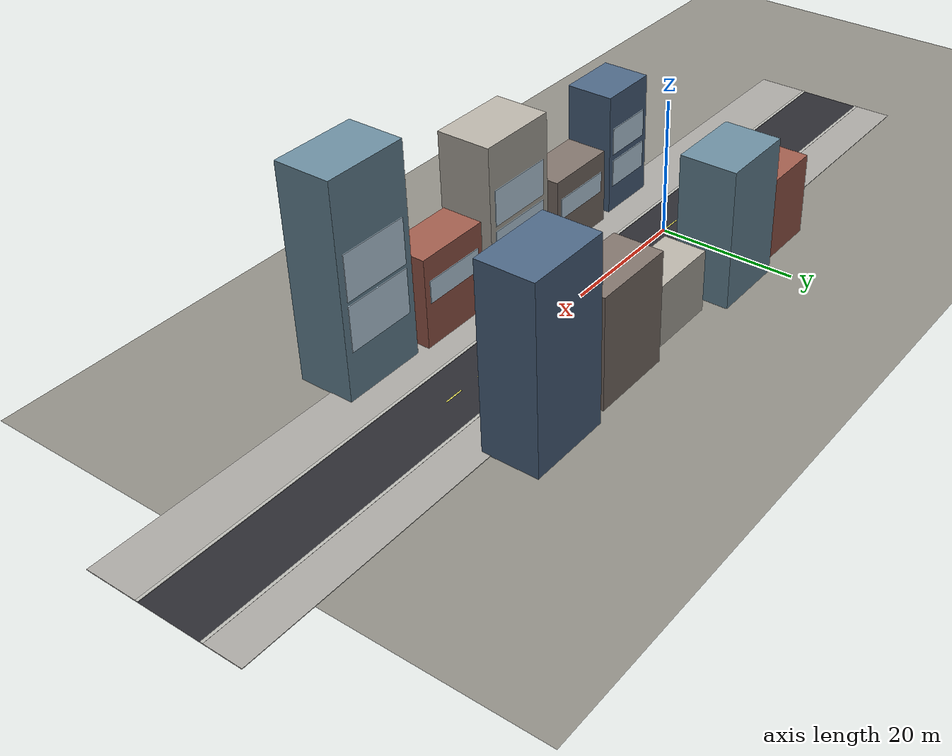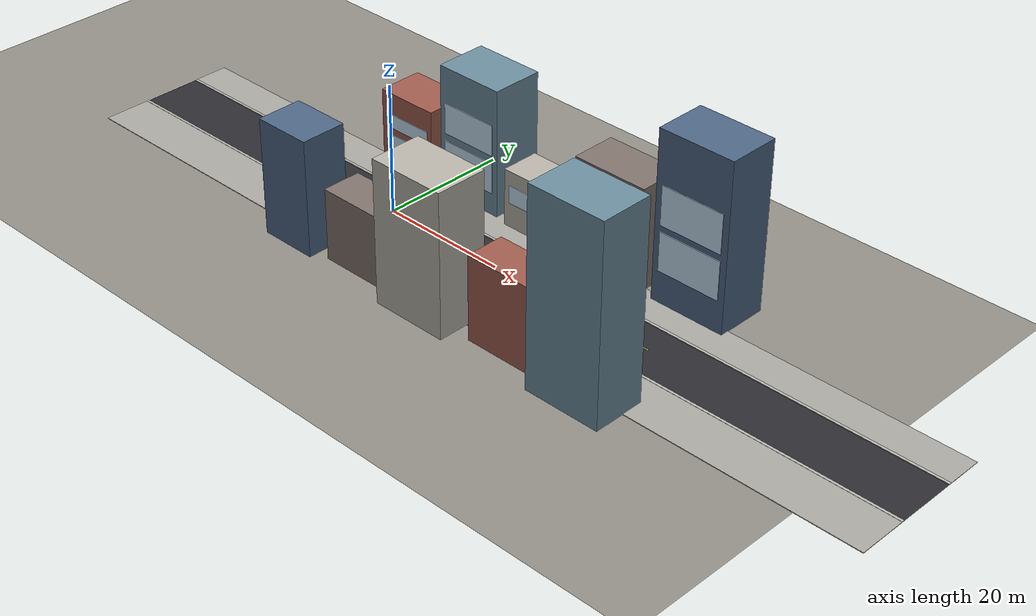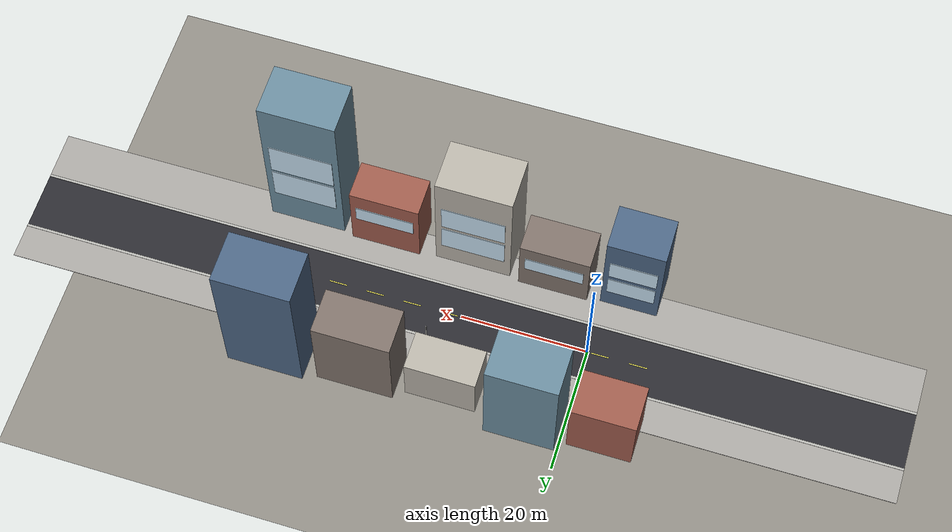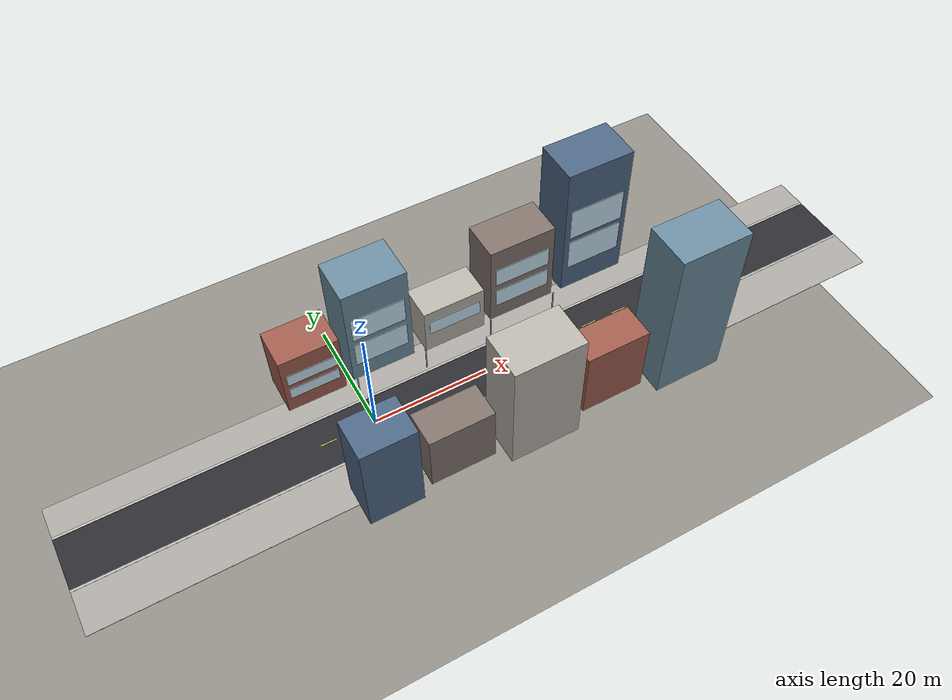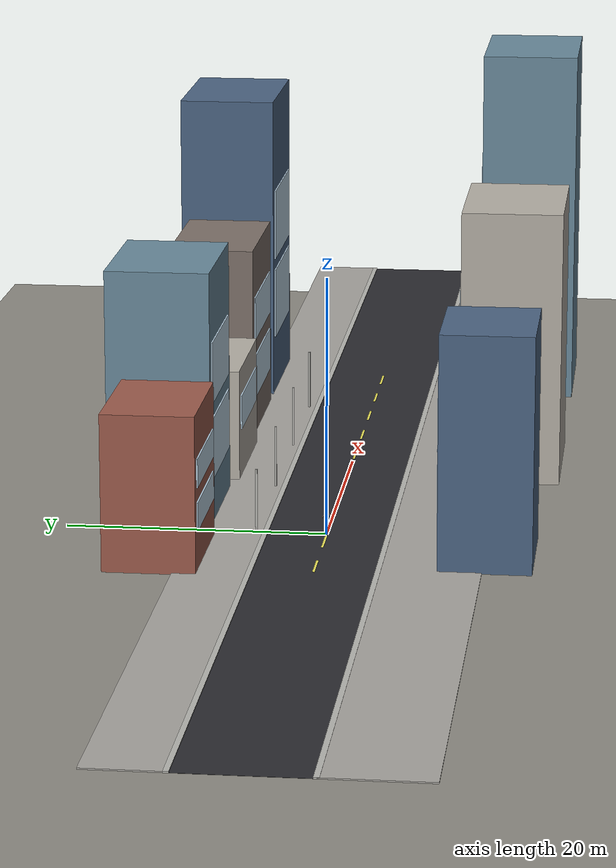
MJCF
<mujoco model="humanoid_street">
    <compiler angle="degree" inertiafromgeom="true"/>
    <default>
        <joint armature="1" damping="1" limited="true"/>
        <geom conaffinity="1" condim="1" contype="1" margin="0.001" material="geom" rgba="0.8 0.6 .4 1"/>
        <motor ctrllimited="true" ctrlrange="-.4 .4"/>
        <!-- Everything decorative inherits this: no mass, no collisions. -->
        <default class="skin">
            <geom conaffinity="0" contype="0" density="0" group="1" material="" rgba="0.87 0.69 0.55 1"/>
        </default>
        <default class="shirt">
            <geom conaffinity="0" contype="0" density="0" group="1" material="" rgba="0.20 0.38 0.68 1"/>
        </default>
        <default class="trousers">
            <geom conaffinity="0" contype="0" density="0" group="1" material="" rgba="0.17 0.19 0.28 1"/>
        </default>
        <default class="shoe">
            <geom conaffinity="0" contype="0" density="0" group="1" material="" rgba="0.11 0.11 0.13 1"/>
        </default>
        <default class="hair">
            <geom conaffinity="0" contype="0" density="0" group="1" material="" rgba="0.13 0.09 0.07 1"/>
        </default>
        <default class="scenery">
            <geom conaffinity="0" contype="0" density="0" group="2" material=""/>
        </default>
    </default>
    <option integrator="RK4" iterations="50" solver="PGS" timestep="0.003"/>
    <size nkey="5" nuser_geom="1"/>
    <visual>
        <map fogend="120" fogstart="60"/>
        <quality shadowsize="8192" offsamples="8"/>
        <headlight ambient="0.45 0.45 0.5" diffuse="0.5 0.5 0.5" specular="0.1 0.1 0.1"/>
    </visual>

    <asset>
        <texture builtin="gradient" height="256" rgb1="0.35 0.55 0.85" rgb2="0.85 0.9 0.95"
                 type="skybox" width="256"/>
        <texture builtin="flat" height="1278" mark="cross" markrgb="1 1 1" name="texgeom"
                 random="0.01" rgb1="0.8 0.6 0.4" rgb2="0.8 0.6 0.4" type="cube" width="127"/>
        <texture builtin="checker" height="300" name="texasphalt" rgb1="0.22 0.22 0.24"
                 rgb2="0.26 0.26 0.28" type="2d" width="300"/>

        <material name="geom" texture="texgeom" texuniform="true"/>
        <material name="MatPlane" reflectance="0.05" shininess="0.1" specular="0.1"
                  texrepeat="40 40" texture="texasphalt"/>
        <material name="road" reflectance="0.08" rgba="0.17 0.17 0.19 1" shininess="0.3"/>
        <material name="paint" rgba="0.93 0.90 0.35 1"/>
        <material name="kerb" rgba="0.72 0.72 0.70 1"/>
        <material name="pavement" rgba="0.62 0.62 0.60 1"/>

        <material name="skin" rgba="0.87 0.69 0.55 1"/>
        <material name="hair" rgba="0.13 0.09 0.07 1"/>
        <material name="shirt" rgba="0.20 0.38 0.68 1"/>
        <material name="trousers" rgba="0.17 0.19 0.28 1"/>
        <material name="shoe" rgba="0.11 0.11 0.13 1"/>

        <material name="brickA" rgba="0.62 0.36 0.30 1"/>
        <material name="brickB" rgba="0.50 0.45 0.42 1"/>
        <material name="glassA" rgba="0.42 0.55 0.62 1"/>
        <material name="glassB" rgba="0.32 0.42 0.52 1"/>
        <material name="concrete" rgba="0.70 0.68 0.64 1"/>
        <material name="window" rgba="0.75 0.85 0.92 1"/>
    </asset>

    <worldbody>
        <light cutoff="120" diffuse="0.9 0.9 0.85" dir="-0.06 0.12 -1" directional="true"
               exponent="1" pos="6 -3 30" specular="0.25 0.25 0.25" castshadow="true"/>

        <!-- Unchanged collision plane: same condim, same friction, same name. -->
        <geom condim="3" friction="1 .1 .1" material="MatPlane" name="floor" pos="0 0 0"
              rgba="0.56 0.55 0.52 1" size="80 40 0.125" type="plane"/>

        <!-- ---------------------------------------------------- the street -->
        <geom class="scenery" rgba="0.17 0.17 0.19 1" pos="20 0 0.01" size="70 4.5 0.01" type="box"/>
        <geom class="scenery" rgba="0.72 0.72 0.70 1" pos="20 4.7 0.06" size="70 0.2 0.06" type="box"/>
        <geom class="scenery" rgba="0.72 0.72 0.70 1" pos="20 -4.7 0.06" size="70 0.2 0.06" type="box"/>
        <geom class="scenery" rgba="0.66 0.65 0.63 1" pos="20 7.5 0.05" size="70 2.8 0.05" type="box"/>
        <geom class="scenery" rgba="0.66 0.65 0.63 1" pos="20 -8.5 0.05" size="70 3.8 0.05" type="box"/>

        <!-- Centre line, dashed, running the length of the road. -->
        <geom class="scenery" rgba="0.93 0.90 0.35 1" pos="-8 0 0.025" size="1.4 0.09 0.005" type="box"/>
        <geom class="scenery" rgba="0.93 0.90 0.35 1" pos="-2 0 0.025" size="1.4 0.09 0.005" type="box"/>
        <geom class="scenery" rgba="0.93 0.90 0.35 1" pos="4 0 0.025" size="1.4 0.09 0.005" type="box"/>
        <geom class="scenery" rgba="0.93 0.90 0.35 1" pos="10 0 0.025" size="1.4 0.09 0.005" type="box"/>
        <geom class="scenery" rgba="0.93 0.90 0.35 1" pos="16 0 0.025" size="1.4 0.09 0.005" type="box"/>
        <geom class="scenery" rgba="0.93 0.90 0.35 1" pos="22 0 0.025" size="1.4 0.09 0.005" type="box"/>
        <geom class="scenery" rgba="0.93 0.90 0.35 1" pos="28 0 0.025" size="1.4 0.09 0.005" type="box"/>
        <geom class="scenery" rgba="0.93 0.90 0.35 1" pos="34 0 0.025" size="1.4 0.09 0.005" type="box"/>
        <geom class="scenery" rgba="0.93 0.90 0.35 1" pos="40 0 0.025" size="1.4 0.09 0.005" type="box"/>
        <geom class="scenery" rgba="0.93 0.90 0.35 1" pos="46 0 0.025" size="1.4 0.09 0.005" type="box"/>

        <!-- ------------------------------------------------ left-hand side -->
        <geom class="scenery" rgba="0.62 0.36 0.30 1" pos="-6 12 6" size="5 3.5 6" type="box"/>
        <geom class="scenery" rgba="0.78 0.88 0.95 1" pos="-6 8.45 7.5" size="4.2 0.05 1.1" type="box"/>
        <geom class="scenery" rgba="0.78 0.88 0.95 1" pos="-6 8.45 4.2" size="4.2 0.05 1.1" type="box"/>

        <geom class="scenery" rgba="0.42 0.55 0.62 1" pos="6 13 10" size="5.5 4 10" type="box"/>
        <geom class="scenery" rgba="0.78 0.88 0.95 1" pos="6 8.95 12" size="4.6 0.05 2.4" type="box"/>
        <geom class="scenery" rgba="0.78 0.88 0.95 1" pos="6 8.95 6" size="4.6 0.05 2.4" type="box"/>

        <geom class="scenery" rgba="0.72 0.70 0.66 1" pos="19 11.5 4.5" size="5.5 3 4.5" type="box"/>
        <geom class="scenery" rgba="0.78 0.88 0.95 1" pos="19 8.45 5.4" size="4.6 0.05 1.4" type="box"/>

        <geom class="scenery" rgba="0.50 0.45 0.42 1" pos="32 12.5 8" size="6 3.5 8" type="box"/>
        <geom class="scenery" rgba="0.78 0.88 0.95 1" pos="32 8.95 10" size="5 0.05 1.8" type="box"/>
        <geom class="scenery" rgba="0.78 0.88 0.95 1" pos="32 8.95 5" size="5 0.05 1.8" type="box"/>

        <geom class="scenery" rgba="0.30 0.40 0.52 1" pos="46 13 13" size="6 4 13" type="box"/>
        <geom class="scenery" rgba="0.78 0.88 0.95 1" pos="46 8.95 15" size="5 0.05 3" type="box"/>
        <geom class="scenery" rgba="0.78 0.88 0.95 1" pos="46 8.95 8" size="5 0.05 3" type="box"/>

        <!-- ----------------------------------------------- right-hand side -->
        <geom class="scenery" rgba="0.30 0.40 0.52 1" pos="-4 -12.5 9" size="4.5 3.5 9" type="box"/>
        <geom class="scenery" rgba="0.78 0.88 0.95 1" pos="-4 -8.95 11" size="3.7 0.05 2" type="box"/>
        <geom class="scenery" rgba="0.78 0.88 0.95 1" pos="-4 -8.95 6" size="3.7 0.05 2" type="box"/>

        <geom class="scenery" rgba="0.50 0.45 0.42 1" pos="8 -11.5 5.5" size="5.5 3 5.5" type="box"/>
        <geom class="scenery" rgba="0.78 0.88 0.95 1" pos="8 -8.45 6.6" size="4.6 0.05 1.5" type="box"/>

        <geom class="scenery" rgba="0.72 0.70 0.66 1" pos="21 -13 11" size="6 4 11" type="box"/>
        <geom class="scenery" rgba="0.78 0.88 0.95 1" pos="21 -8.95 13" size="5 0.05 2.6" type="box"/>
        <geom class="scenery" rgba="0.78 0.88 0.95 1" pos="21 -8.95 7" size="5 0.05 2.6" type="box"/>

        <geom class="scenery" rgba="0.62 0.36 0.30 1" pos="35 -11.5 6.5" size="5.5 3 6.5" type="box"/>
        <geom class="scenery" rgba="0.78 0.88 0.95 1" pos="35 -8.45 8" size="4.6 0.05 1.6" type="box"/>

        <geom class="scenery" rgba="0.42 0.55 0.62 1" pos="48 -13 15" size="6 4 15" type="box"/>
        <geom class="scenery" rgba="0.78 0.88 0.95 1" pos="48 -8.95 17" size="5 0.05 3.2" type="box"/>
        <geom class="scenery" rgba="0.78 0.88 0.95 1" pos="48 -8.95 10" size="5 0.05 3.2" type="box"/>

        <!-- Street lamps, for a sense of scale and motion as it passes them. -->
        <geom class="scenery" rgba="0.72 0.72 0.70 1" pos="0 5.4 2.5" size="0.08 0.08 2.5" type="box"/>
        <geom class="scenery" rgba="0.72 0.72 0.70 1" pos="12 5.4 2.5" size="0.08 0.08 2.5" type="box"/>
        <geom class="scenery" rgba="0.72 0.72 0.70 1" pos="24 5.4 2.5" size="0.08 0.08 2.5" type="box"/>
        <geom class="scenery" rgba="0.72 0.72 0.70 1" pos="36 5.4 2.5" size="0.08 0.08 2.5" type="box"/>

        <body name="torso" pos="0 0 1.4">
            <camera name="track" mode="trackcom" pos="0 -6.6 0.5" xyaxes="1 0 0 0 0.11 1"/>
            <camera name="side" mode="trackcom" pos="0 -7 1.5" xyaxes="1 0 0 0 0.3 1"/>
            <joint armature="0" damping="0" limited="false" name="root" pos="0 0 0" stiffness="0" type="free"/>
            <geom fromto="0 -.07 0 0 .07 0" name="torso1" rgba="0 0 0 0" size="0.07" type="capsule"/>
            <geom name="head" pos="0 0 .19" rgba="0 0 0 0" size=".09" type="sphere" user="258"/>
            <geom fromto="-.01 -.06 -.12 -.01 .06 -.12" name="uwaist" rgba="0 0 0 0" size="0.06" type="capsule"/>

            <!-- chest, shoulders, neck, head -->
            <geom class="shirt" type="box" pos="0 0 -0.02" size="0.10 0.15 0.15"/>
            <geom class="shirt" type="sphere" pos="0 -0.15 0.03" size="0.075"/>
            <geom class="shirt" type="sphere" pos="0 0.15 0.03" size="0.075"/>
            <geom class="shirt" type="box" pos="-0.005 0 -0.15" size="0.085 0.115 0.06"/>
            <geom class="skin" type="capsule" fromto="0 0 0.09 0 0 0.13" size="0.035"/>
            <geom class="skin" type="sphere" pos="0 0 0.2" size="0.088"/>
            <geom class="skin" type="box" pos="0.06 0 0.19" size="0.035 0.045 0.05"/>
            <geom class="hair" type="sphere" pos="-0.012 0 0.225" size="0.086"/>
            <geom class="hair" type="box" pos="0.055 0 0.235" size="0.04 0.07 0.022"/>
            <!-- eyes, so the direction of travel reads at a glance -->
            <geom class="hair" type="sphere" pos="0.075 -0.036 0.205" size="0.014"/>
            <geom class="hair" type="sphere" pos="0.075 0.036 0.205" size="0.014"/>

            <body name="lwaist" pos="-.01 0 -0.260" quat="1.000 0 -0.002 0">
                <geom fromto="0 -.06 0 0 .06 0" name="lwaist" rgba="0 0 0 0" size="0.06" type="capsule"/>
                <geom class="shirt" type="box" pos="0 0 -0.02" size="0.075 0.10 0.09"/>
                <joint armature="0.02" axis="0 0 1" damping="5" name="abdomen_z" pos="0 0 0.065" range="-45 45" stiffness="20" type="hinge"/>
                <joint armature="0.02" axis="0 1 0" damping="5" name="abdomen_y" pos="0 0 0.065" range="-75 30" stiffness="10" type="hinge"/>
                <body name="pelvis" pos="0 0 -0.165" quat="1.000 0 -0.002 0">
                    <joint armature="0.02" axis="1 0 0" damping="5" name="abdomen_x" pos="0 0 0.1" range="-35 35" stiffness="10" type="hinge"/>
                    <geom fromto="-.02 -.07 0 -.02 .07 0" name="butt" rgba="0 0 0 0" size="0.09" type="capsule"/>
                    <geom class="trousers" type="box" pos="-0.015 0 -0.01" size="0.085 0.125 0.085"/>

                    <body name="right_thigh" pos="0 -0.1 -0.04">
                        <joint armature="0.01" axis="1 0 0" damping="5" name="right_hip_x" pos="0 0 0" range="-25 5" stiffness="10" type="hinge"/>
                        <joint armature="0.01" axis="0 0 1" damping="5" name="right_hip_z" pos="0 0 0" range="-60 35" stiffness="10" type="hinge"/>
                        <joint armature="0.0080" axis="0 1 0" damping="5" name="right_hip_y" pos="0 0 0" range="-110 20" stiffness="20" type="hinge"/>
                        <geom fromto="0 0 0 0 0.01 -.34" name="right_thigh1" rgba="0 0 0 0" size="0.06" type="capsule"/>
                        <geom class="trousers" type="capsule" fromto="0 0 0.02 0 0.01 -.34" size="0.072"/>
                        <body name="right_shin" pos="0 0.01 -0.403">
                            <joint armature="0.0060" axis="0 -1 0" name="right_knee" pos="0 0 .02" range="-160 -2" type="hinge"/>
                            <geom fromto="0 0 0 0 0 -.3" name="right_shin1" rgba="0 0 0 0" size="0.049" type="capsule"/>
                            <geom class="trousers" type="capsule" fromto="0 0 0.01 0 0 -.16" size="0.058"/>
                            <geom class="skin" type="capsule" fromto="0 0 -.16 0 0 -.3" size="0.05"/>
                            <body name="right_foot" pos="0 0 -0.45">
                                <geom name="right_foot" pos="0 0 0.1" rgba="0 0 0 0" size="0.075" type="sphere" user="0"/>
                                <geom class="shoe" type="box" pos="0.035 0 0.075" size="0.115 0.052 0.042"/>
                            </body>
                        </body>
                    </body>

                    <body name="left_thigh" pos="0 0.1 -0.04">
                        <joint armature="0.01" axis="-1 0 0" damping="5" name="left_hip_x" pos="0 0 0" range="-25 5" stiffness="10" type="hinge"/>
                        <joint armature="0.01" axis="0 0 -1" damping="5" name="left_hip_z" pos="0 0 0" range="-60 35" stiffness="10" type="hinge"/>
                        <joint armature="0.01" axis="0 1 0" damping="5" name="left_hip_y" pos="0 0 0" range="-110 20" stiffness="20" type="hinge"/>
                        <geom fromto="0 0 0 0 -0.01 -.34" name="left_thigh1" rgba="0 0 0 0" size="0.06" type="capsule"/>
                        <geom class="trousers" type="capsule" fromto="0 0 0.02 0 -0.01 -.34" size="0.072"/>
                        <body name="left_shin" pos="0 -0.01 -0.403">
                            <joint armature="0.0060" axis="0 -1 0" name="left_knee" pos="0 0 .02" range="-160 -2" stiffness="1" type="hinge"/>
                            <geom fromto="0 0 0 0 0 -.3" name="left_shin1" rgba="0 0 0 0" size="0.049" type="capsule"/>
                            <geom class="trousers" type="capsule" fromto="0 0 0.01 0 0 -.16" size="0.058"/>
                            <geom class="skin" type="capsule" fromto="0 0 -.16 0 0 -.3" size="0.05"/>
                            <body name="left_foot" pos="0 0 -0.45">
                                <geom name="left_foot" pos="0 0 0.1" rgba="0 0 0 0" size="0.075" type="sphere" user="0"/>
                                <geom class="shoe" type="box" pos="0.035 0 0.075" size="0.115 0.052 0.042"/>
                            </body>
                        </body>
                    </body>
                </body>
            </body>

            <body name="right_upper_arm" pos="0 -0.17 0.06">
                <joint armature="0.0068" axis="2 1 1" name="right_shoulder1" pos="0 0 0" range="-85 60" stiffness="1" type="hinge"/>
                <joint armature="0.0051" axis="0 -1 1" name="right_shoulder2" pos="0 0 0" range="-85 60" stiffness="1" type="hinge"/>
                <geom fromto="0 0 0 .16 -.16 -.16" name="right_uarm1" rgba="0 0 0 0" size="0.04 0.16" type="capsule"/>
                <geom class="shirt" type="capsule" fromto="0 0 0 .09 -.09 -.09" size="0.052"/>
                <geom class="skin" type="capsule" fromto=".09 -.09 -.09 .16 -.16 -.16" size="0.045"/>
                <body name="right_lower_arm" pos=".18 -.18 -.18">
                    <joint armature="0.0028" axis="0 -1 1" name="right_elbow" pos="0 0 0" range="-90 50" stiffness="0" type="hinge"/>
                    <geom fromto="0.01 0.01 0.01 .17 .17 .17" name="right_larm" rgba="0 0 0 0" size="0.031" type="capsule"/>
                    <geom name="right_hand" pos=".18 .18 .18" rgba="0 0 0 0" size="0.04" type="sphere"/>
                    <geom class="skin" type="capsule" fromto="0.01 0.01 0.01 .17 .17 .17" size="0.038"/>
                    <geom class="skin" type="sphere" pos=".18 .18 .18" size="0.046"/>
                    <camera pos="0 0 0"/>
                </body>
            </body>

            <body name="left_upper_arm" pos="0 0.17 0.06">
                <joint armature="0.0068" axis="2 -1 1" name="left_shoulder1" pos="0 0 0" range="-60 85" stiffness="1" type="hinge"/>
                <joint armature="0.0051" axis="0 1 1" name="left_shoulder2" pos="0 0 0" range="-60 85" stiffness="1" type="hinge"/>
                <geom fromto="0 0 0 .16 .16 -.16" name="left_uarm1" rgba="0 0 0 0" size="0.04 0.16" type="capsule"/>
                <geom class="shirt" type="capsule" fromto="0 0 0 .09 .09 -.09" size="0.052"/>
                <geom class="skin" type="capsule" fromto=".09 .09 -.09 .16 .16 -.16" size="0.045"/>
                <body name="left_lower_arm" pos=".18 .18 -.18">
                    <joint armature="0.0028" axis="0 -1 -1" name="left_elbow" pos="0 0 0" range="-90 50" stiffness="0" type="hinge"/>
                    <geom fromto="0.01 -0.01 0.01 .17 -.17 .17" name="left_larm" rgba="0 0 0 0" size="0.031" type="capsule"/>
                    <geom name="left_hand" pos=".18 -.18 .18" rgba="0 0 0 0" size="0.04" type="sphere"/>
                    <geom class="skin" type="capsule" fromto="0.01 -0.01 0.01 .17 -.17 .17" size="0.038"/>
                    <geom class="skin" type="sphere" pos=".18 -.18 .18" size="0.046"/>
                </body>
            </body>
        </body>
    </worldbody>

    <tendon>
        <fixed name="left_hipknee">
            <joint coef="-1" joint="left_hip_y"/>
            <joint coef="1" joint="left_knee"/>
        </fixed>
        <fixed name="right_hipknee">
            <joint coef="-1" joint="right_hip_y"/>
            <joint coef="1" joint="right_knee"/>
        </fixed>
    </tendon>

    <actuator>
        <motor gear="100" joint="abdomen_y" name="abdomen_y"/>
        <motor gear="100" joint="abdomen_z" name="abdomen_z"/>
        <motor gear="100" joint="abdomen_x" name="abdomen_x"/>
        <motor gear="100" joint="right_hip_x" name="right_hip_x"/>
        <motor gear="100" joint="right_hip_z" name="right_hip_z"/>
        <motor gear="300" joint="right_hip_y" name="right_hip_y"/>
        <motor gear="200" joint="right_knee" name="right_knee"/>
        <motor gear="100" joint="left_hip_x" name="left_hip_x"/>
        <motor gear="100" joint="left_hip_z" name="left_hip_z"/>
        <motor gear="300" joint="left_hip_y" name="left_hip_y"/>
        <motor gear="200" joint="left_knee" name="left_knee"/>
        <motor gear="25" joint="right_shoulder1" name="right_shoulder1"/>
        <motor gear="25" joint="right_shoulder2" name="right_shoulder2"/>
        <motor gear="25" joint="right_elbow" name="right_elbow"/>
        <motor gear="25" joint="left_shoulder1" name="left_shoulder1"/>
        <motor gear="25" joint="left_shoulder2" name="left_shoulder2"/>
        <motor gear="25" joint="left_elbow" name="left_elbow"/>
    </actuator>
</mujoco>
